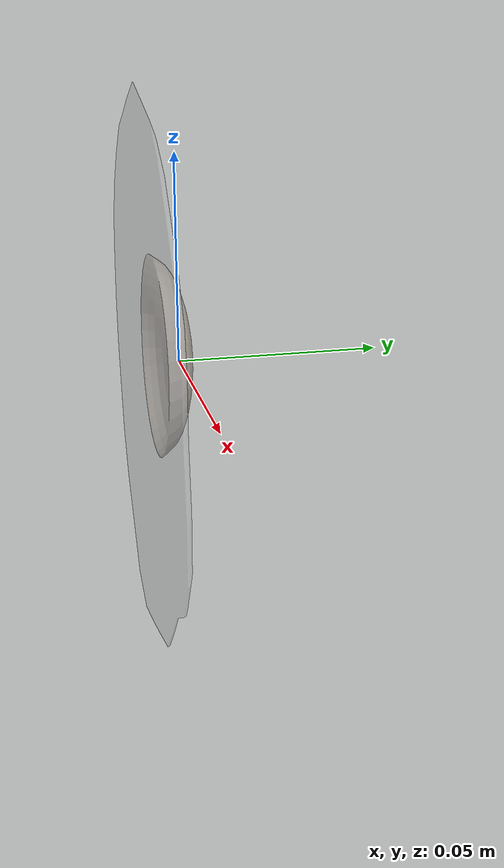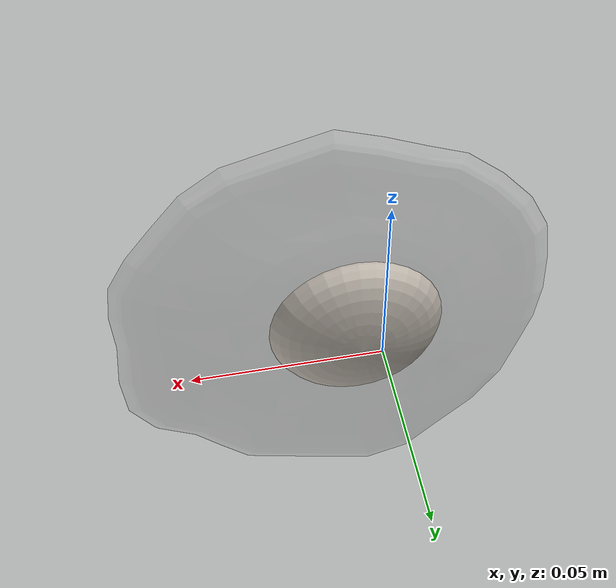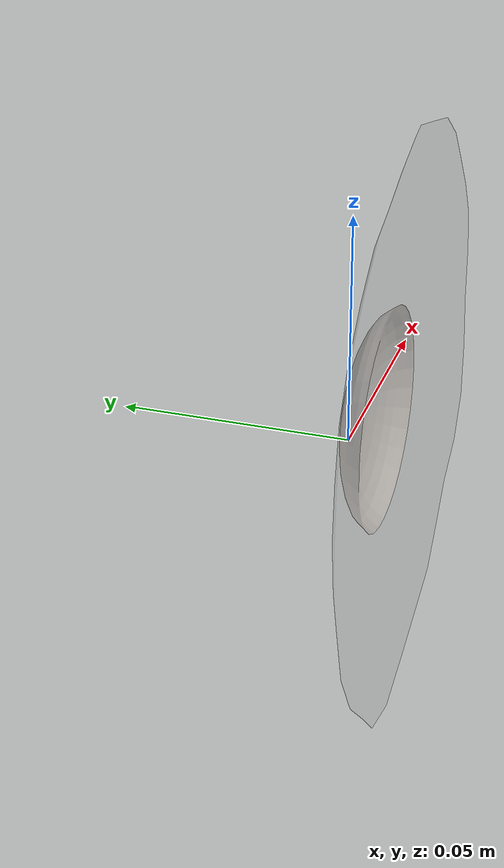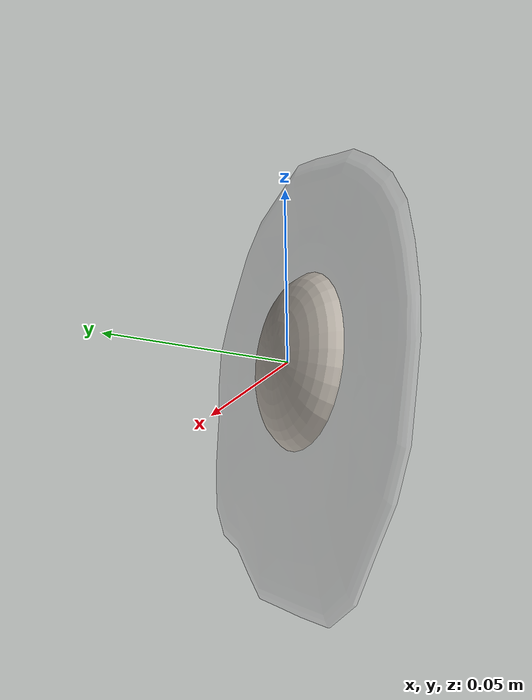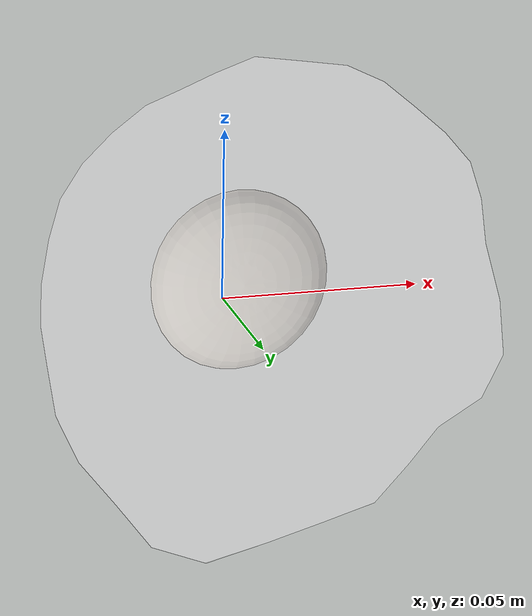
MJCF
<mujoco model="Egg_Cracked_15">
  <compiler autolimits="true" boundmass="0.01" angle="radian"/>
  <default>
    <default class="/">
      <default class="__VISUAL_MJT__">
        <geom contype="0" conaffinity="0" group="0"/>
      </default>
      <default class="__STRUCTURAL_MJT__">
        <geom contype="8" conaffinity="15" group="4" friction="0.90000000000000002 0.90000000000000002 0.001" solref="0.025000000000000001 1" solimp="0.998 0.998 0.001"/>
      </default>
      <default class="__DYNAMIC_MJT__">
        <geom contype="1" conaffinity="15" group="4" friction="0.90000000000000002 0.90000000000000002 0.001" solref="0.025000000000000001 1" solimp="0.998 0.998 0.001"/>
      </default>
    </default>
  </default>
  <asset>
    <texture name="Fried_Egg_White_Uncooked_Mat" type="2d" file="Fried_Egg_AlbedoTransparency.png"/>
    <material name="material_Fried_Egg_White_Uncooked_Mat" class="/" texture="Fried_Egg_White_Uncooked_Mat" specular="0.5" shininess="0.5" rgba="1 1 1 0.5"/>
    <texture name="Fried_Egg_Yolk_Mat" type="2d" file="Fried_Egg_AlbedoTransparency.png"/>
    <material name="material_Fried_Egg_Yolk_Mat" class="/" texture="Fried_Egg_Yolk_Mat" specular="0.5" shininess="0.5" rgba="1 1 1 1"/>
    <mesh name="Egg_Cracked_15_fried_egg_14_0" class="/" file="Egg_Cracked_15_fried_egg_14/Egg_Cracked_15_fried_egg_14_0.obj" scale="1 1 1"/>
    <mesh name="Egg_Cracked_15_fried_egg_14_1" class="/" file="Egg_Cracked_15_fried_egg_14/Egg_Cracked_15_fried_egg_14_1.obj" scale="1 1 1"/>
  </asset>
  <worldbody>
    <body name="Egg_Cracked_15">
      <joint name="Egg_Cracked_15_free" class="/" type="free" pos="0 0 0" axis="0 0 1" stiffness="0" range="0 0" armature="0" damping="0.10000000000000001" frictionloss="0"/>
      <body name="Egg_Cracked_15_fried_egg_14" pos="0.0056499999999999996 -0.01023 0.0041900000000000001" quat="1 0 0 0">
        <geom name="Egg_Cracked_15_fried_egg_14_0" class="__VISUAL_MJT__" type="mesh" material="material_Fried_Egg_White_Uncooked_Mat" shellinertia="false" mesh="Egg_Cracked_15_fried_egg_14_0"/>
        <geom name="Egg_Cracked_15_fried_egg_14_1" class="__VISUAL_MJT__" type="mesh" material="material_Fried_Egg_Yolk_Mat" shellinertia="false" mesh="Egg_Cracked_15_fried_egg_14_1"/>
        <geom name="Egg_Cracked_15_PrimitiveCollider_0" class="__DYNAMIC_MJT__" type="box" size="0.058526873588562012 0.010231256484985352 0.067602440714836121" rgba="0 1 0 1" pos="0.0056470632553100586 0.010231256484985352 -0.0041922777891159058" quat="1 0 0 0"/>
      </body>
    </body>
  </worldbody>
</mujoco>
